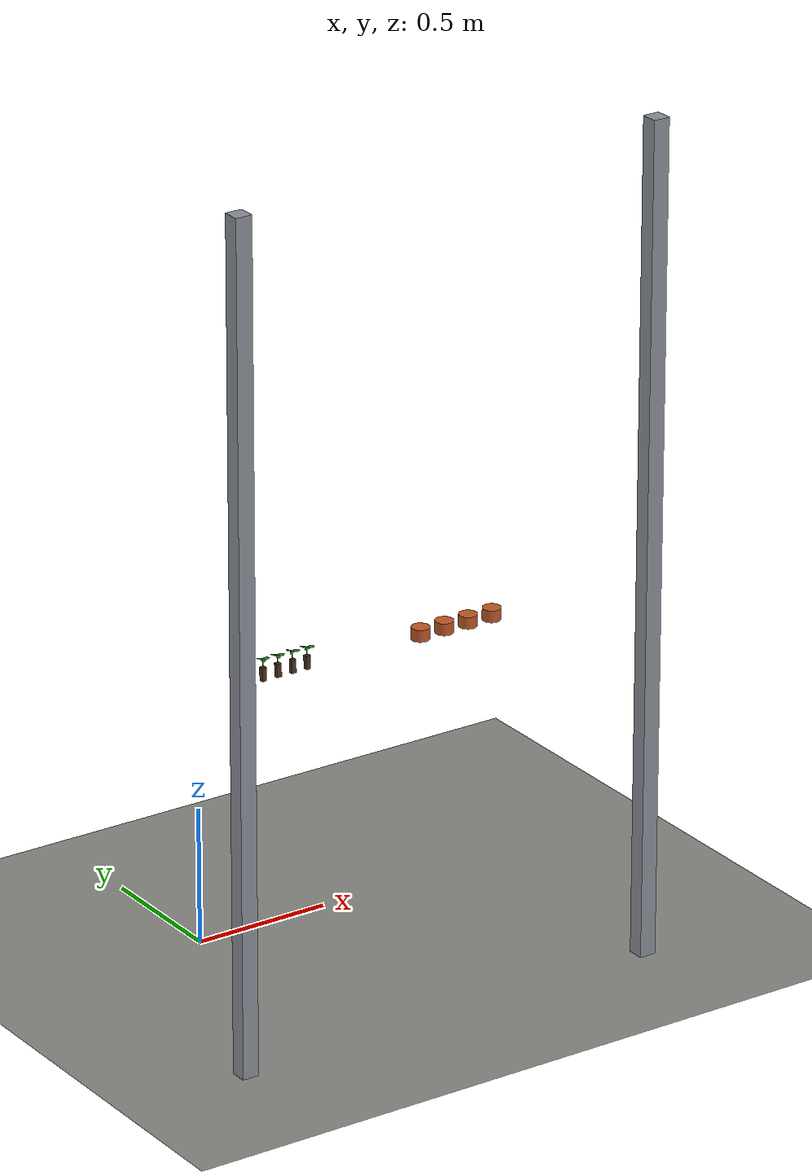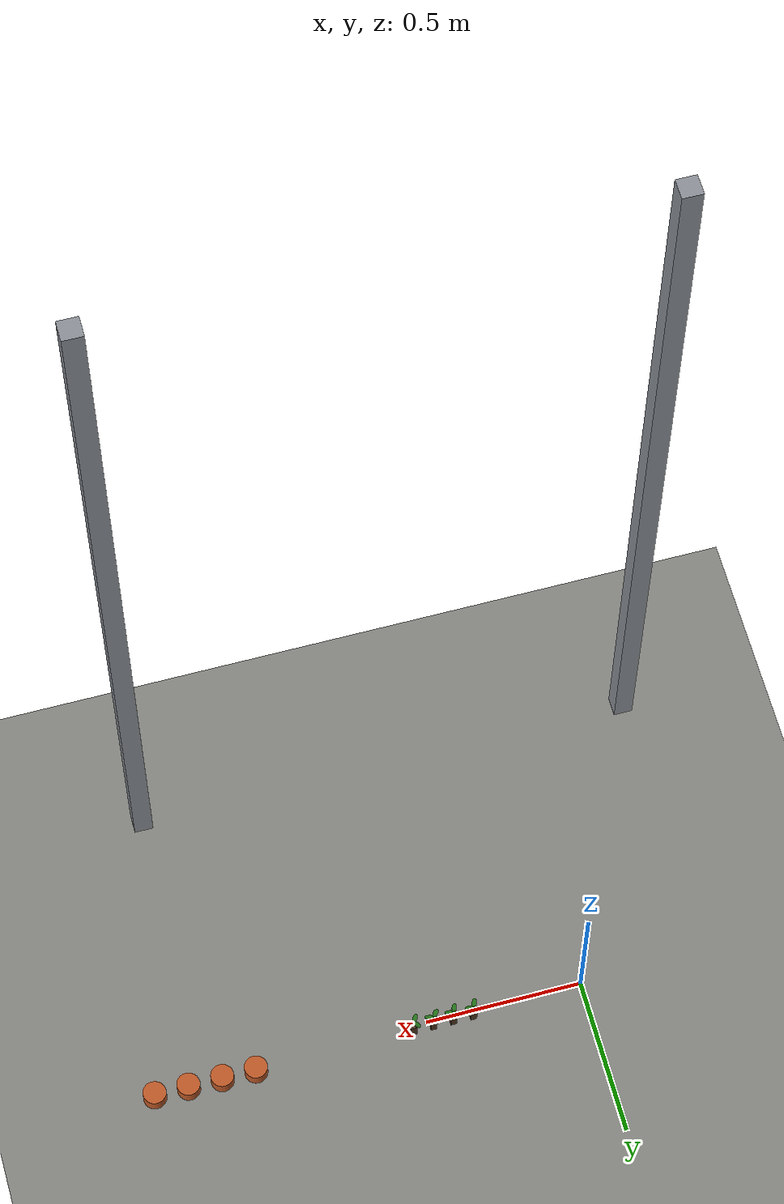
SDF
<sdf version="1.8">
 <world name="nursery_transplanting">
  <model name="floor">
   <static>true</static>
   <link name="link">
    <collision name="c_collision">
     <geometry><plane><normal>0 0 1</normal><size>20 20</size></plane></geometry>
     <surface><friction><ode><mu>1.0</mu><mu2>1.0</mu2></ode></friction></surface>
    </collision>
    <visual name="v">
     <geometry><plane><normal>0 0 1</normal><size>20 20</size></plane></geometry>
     <material>
      <ambient>0.520 0.520 0.500 1</ambient>
      <diffuse>0.520 0.520 0.500 1</diffuse>
      <specular>0.1 0.1 0.1 1</specular>
     </material>
    </visual>
   </link>
  </model>
  <model name="post_0a">
   <static>true</static>
   <pose>-0.4000 -0.9000 1.5000 0.0000 0.0000 0.0000</pose>
   <link name="link">
    <visual name="v">
     <geometry><box><size>0.0600 0.0600 3.0000</size></box></geometry>
     <material>
      <ambient>0.550 0.570 0.600 1</ambient>
      <diffuse>0.550 0.570 0.600 1</diffuse>
      <specular>0.1 0.1 0.1 1</specular>
     </material>
    </visual>
   </link>
  </model>
  <model name="post_1a">
   <static>true</static>
   <pose>1.2000 -0.9000 1.5000 0.0000 0.0000 0.0000</pose>
   <link name="link">
    <visual name="v">
     <geometry><box><size>0.0600 0.0600 3.0000</size></box></geometry>
     <material>
      <ambient>0.550 0.570 0.600 1</ambient>
      <diffuse>0.550 0.570 0.600 1</diffuse>
      <specular>0.1 0.1 0.1 1</specular>
     </material>
    </visual>
   </link>
  </model>
  <model name="seedling_0">
   <pose>0.4500 0.2900 0.7770 0.0000 0.0000 0.0000</pose>
   <link name="link">
    <inertial>
     <mass>0.016</mass>
     <inertia>
      <ixx>3.765e-06</ixx>
      <iyy>3.765e-06</iyy>
      <izz>8.640e-07</izz>
      <ixy>0</ixy>
      <ixz>0</ixz>
      <iyz>0</iyz>
     </inertia>
    </inertial>
    <visual name="plug">
     <geometry><box><size>0.0180 0.0180 0.0500</size></box></geometry>
     <material>
      <ambient>0.300 0.200 0.120 1</ambient>
      <diffuse>0.300 0.200 0.120 1</diffuse>
      <specular>0.1 0.1 0.1 1</specular>
     </material>
    </visual>
    <visual name="stem">
     <pose>0.0000 0.0000 0.0400 0.0000 0.0000 0.0000</pose>
     <geometry><cylinder><radius>0.0015</radius><length>0.0300</length></cylinder></geometry>
     <material>
      <ambient>0.100 0.500 0.120 1</ambient>
      <diffuse>0.100 0.500 0.120 1</diffuse>
      <specular>0.1 0.1 0.1 1</specular>
     </material>
    </visual>
    <collision name="core_collision">
     <geometry><box><size>0.0060 0.0060 0.0500</size></box></geometry>
     <surface><friction><ode><mu>1.5</mu><mu2>1.5</mu2></ode></friction></surface>
    </collision>
    <collision name="foot_collision">
     <pose>0.0000 0.0000 -0.0200 0.0000 0.0000 0.0000</pose>
     <geometry><box><size>0.0180 0.0180 0.0100</size></box></geometry>
     <surface><friction><ode><mu>1.5</mu><mu2>1.5</mu2></ode></friction></surface>
    </collision>
    <visual name="leaf0">
     <pose>0.0120 -0.0002 0.0550 0.2500 0.0000 -0.0153</pose>
     <geometry><ellipsoid><radii>0.0140 0.0070 0.0020</radii></ellipsoid></geometry>
     <material>
      <ambient>0.140 0.450 0.100 1</ambient>
      <diffuse>0.140 0.450 0.100 1</diffuse>
      <specular>0.1 0.1 0.1 1</specular>
     </material>
    </visual>
    <visual name="leaf1">
     <pose>-0.0070 0.0097 0.0550 0.2500 0.0000 2.1945</pose>
     <geometry><ellipsoid><radii>0.0140 0.0070 0.0020</radii></ellipsoid></geometry>
     <material>
      <ambient>0.140 0.450 0.100 1</ambient>
      <diffuse>0.140 0.450 0.100 1</diffuse>
      <specular>0.1 0.1 0.1 1</specular>
     </material>
    </visual>
    <visual name="leaf2">
     <pose>-0.0048 -0.0110 0.0550 0.2500 0.0000 4.2998</pose>
     <geometry><ellipsoid><radii>0.0140 0.0070 0.0020</radii></ellipsoid></geometry>
     <material>
      <ambient>0.140 0.450 0.100 1</ambient>
      <diffuse>0.140 0.450 0.100 1</diffuse>
      <specular>0.1 0.1 0.1 1</specular>
     </material>
    </visual>
   </link>
   <plugin filename="ignition-gazebo-detachable-joint-system" name="ignition::gazebo::systems::DetachableJoint">
    <parent_link>link</parent_link>
    <child_model>agrobot</child_model>
    <child_link>link_4</child_link>
    <attach_topic>/agrobot/sim/seedling_0/attach_gripper</attach_topic>
    <detach_topic>/agrobot/sim/seedling_0/detach_gripper</detach_topic>
    <suppress_child_warning>true</suppress_child_warning>
   </plugin>
  </model>
  <model name="seedling_2">
   <pose>0.5100 0.2900 0.7770 0.0000 0.0000 0.0000</pose>
   <link name="link">
    <inertial>
     <mass>0.016</mass>
     <inertia>
      <ixx>3.765e-06</ixx>
      <iyy>3.765e-06</iyy>
      <izz>8.640e-07</izz>
      <ixy>0</ixy>
      <ixz>0</ixz>
      <iyz>0</iyz>
     </inertia>
    </inertial>
    <visual name="plug">
     <geometry><box><size>0.0180 0.0180 0.0500</size></box></geometry>
     <material>
      <ambient>0.300 0.200 0.120 1</ambient>
      <diffuse>0.300 0.200 0.120 1</diffuse>
      <specular>0.1 0.1 0.1 1</specular>
     </material>
    </visual>
    <visual name="stem">
     <pose>0.0000 0.0000 0.0400 0.0000 0.0000 0.0000</pose>
     <geometry><cylinder><radius>0.0015</radius><length>0.0300</length></cylinder></geometry>
     <material>
      <ambient>0.100 0.500 0.120 1</ambient>
      <diffuse>0.100 0.500 0.120 1</diffuse>
      <specular>0.1 0.1 0.1 1</specular>
     </material>
    </visual>
    <collision name="core_collision">
     <geometry><box><size>0.0060 0.0060 0.0500</size></box></geometry>
     <surface><friction><ode><mu>1.5</mu><mu2>1.5</mu2></ode></friction></surface>
    </collision>
    <collision name="foot_collision">
     <pose>0.0000 0.0000 -0.0200 0.0000 0.0000 0.0000</pose>
     <geometry><box><size>0.0180 0.0180 0.0100</size></box></geometry>
     <surface><friction><ode><mu>1.5</mu><mu2>1.5</mu2></ode></friction></surface>
    </collision>
    <visual name="leaf0">
     <pose>0.0119 -0.0016 0.0550 0.2500 0.0000 -0.1356</pose>
     <geometry><ellipsoid><radii>0.0140 0.0070 0.0020</radii></ellipsoid></geometry>
     <material>
      <ambient>0.140 0.450 0.100 1</ambient>
      <diffuse>0.140 0.450 0.100 1</diffuse>
      <specular>0.1 0.1 0.1 1</specular>
     </material>
    </visual>
    <visual name="leaf1">
     <pose>-0.0079 0.0091 0.0550 0.2500 0.0000 2.2862</pose>
     <geometry><ellipsoid><radii>0.0140 0.0070 0.0020</radii></ellipsoid></geometry>
     <material>
      <ambient>0.140 0.450 0.100 1</ambient>
      <diffuse>0.140 0.450 0.100 1</diffuse>
      <specular>0.1 0.1 0.1 1</specular>
     </material>
    </visual>
    <visual name="leaf2">
     <pose>-0.0047 -0.0111 0.0550 0.2500 0.0000 4.3144</pose>
     <geometry><ellipsoid><radii>0.0140 0.0070 0.0020</radii></ellipsoid></geometry>
     <material>
      <ambient>0.140 0.450 0.100 1</ambient>
      <diffuse>0.140 0.450 0.100 1</diffuse>
      <specular>0.1 0.1 0.1 1</specular>
     </material>
    </visual>
   </link>
   <plugin filename="ignition-gazebo-detachable-joint-system" name="ignition::gazebo::systems::DetachableJoint">
    <parent_link>link</parent_link>
    <child_model>agrobot</child_model>
    <child_link>link_4</child_link>
    <attach_topic>/agrobot/sim/seedling_2/attach_gripper</attach_topic>
    <detach_topic>/agrobot/sim/seedling_2/detach_gripper</detach_topic>
    <suppress_child_warning>true</suppress_child_warning>
   </plugin>
  </model>
  <model name="seedling_4">
   <pose>0.5700 0.2900 0.7770 0.0000 0.0000 0.0000</pose>
   <link name="link">
    <inertial>
     <mass>0.016</mass>
     <inertia>
      <ixx>3.765e-06</ixx>
      <iyy>3.765e-06</iyy>
      <izz>8.640e-07</izz>
      <ixy>0</ixy>
      <ixz>0</ixz>
      <iyz>0</iyz>
     </inertia>
    </inertial>
    <visual name="plug">
     <geometry><box><size>0.0180 0.0180 0.0500</size></box></geometry>
     <material>
      <ambient>0.300 0.200 0.120 1</ambient>
      <diffuse>0.300 0.200 0.120 1</diffuse>
      <specular>0.1 0.1 0.1 1</specular>
     </material>
    </visual>
    <visual name="stem">
     <pose>0.0000 0.0000 0.0400 0.0000 0.0000 0.0000</pose>
     <geometry><cylinder><radius>0.0015</radius><length>0.0300</length></cylinder></geometry>
     <material>
      <ambient>0.100 0.500 0.120 1</ambient>
      <diffuse>0.100 0.500 0.120 1</diffuse>
      <specular>0.1 0.1 0.1 1</specular>
     </material>
    </visual>
    <collision name="core_collision">
     <geometry><box><size>0.0060 0.0060 0.0500</size></box></geometry>
     <surface><friction><ode><mu>1.5</mu><mu2>1.5</mu2></ode></friction></surface>
    </collision>
    <collision name="foot_collision">
     <pose>0.0000 0.0000 -0.0200 0.0000 0.0000 0.0000</pose>
     <geometry><box><size>0.0180 0.0180 0.0100</size></box></geometry>
     <surface><friction><ode><mu>1.5</mu><mu2>1.5</mu2></ode></friction></surface>
    </collision>
    <visual name="leaf0">
     <pose>0.0117 -0.0025 0.0550 0.2500 0.0000 -0.2128</pose>
     <geometry><ellipsoid><radii>0.0140 0.0070 0.0020</radii></ellipsoid></geometry>
     <material>
      <ambient>0.140 0.450 0.100 1</ambient>
      <diffuse>0.140 0.450 0.100 1</diffuse>
      <specular>0.1 0.1 0.1 1</specular>
     </material>
    </visual>
    <visual name="leaf1">
     <pose>-0.0057 0.0106 0.0550 0.2500 0.0000 2.0640</pose>
     <geometry><ellipsoid><radii>0.0140 0.0070 0.0020</radii></ellipsoid></geometry>
     <material>
      <ambient>0.140 0.450 0.100 1</ambient>
      <diffuse>0.140 0.450 0.100 1</diffuse>
      <specular>0.1 0.1 0.1 1</specular>
     </material>
    </visual>
    <visual name="leaf2">
     <pose>-0.0079 -0.0091 0.0550 0.2500 0.0000 3.9974</pose>
     <geometry><ellipsoid><radii>0.0140 0.0070 0.0020</radii></ellipsoid></geometry>
     <material>
      <ambient>0.140 0.450 0.100 1</ambient>
      <diffuse>0.140 0.450 0.100 1</diffuse>
      <specular>0.1 0.1 0.1 1</specular>
     </material>
    </visual>
   </link>
   <plugin filename="ignition-gazebo-detachable-joint-system" name="ignition::gazebo::systems::DetachableJoint">
    <parent_link>link</parent_link>
    <child_model>agrobot</child_model>
    <child_link>link_4</child_link>
    <attach_topic>/agrobot/sim/seedling_4/attach_gripper</attach_topic>
    <detach_topic>/agrobot/sim/seedling_4/detach_gripper</detach_topic>
    <suppress_child_warning>true</suppress_child_warning>
   </plugin>
  </model>
  <model name="seedling_6">
   <pose>0.6300 0.2900 0.7770 0.0000 0.0000 0.0000</pose>
   <link name="link">
    <inertial>
     <mass>0.016</mass>
     <inertia>
      <ixx>3.765e-06</ixx>
      <iyy>3.765e-06</iyy>
      <izz>8.640e-07</izz>
      <ixy>0</ixy>
      <ixz>0</ixz>
      <iyz>0</iyz>
     </inertia>
    </inertial>
    <visual name="plug">
     <geometry><box><size>0.0180 0.0180 0.0500</size></box></geometry>
     <material>
      <ambient>0.300 0.200 0.120 1</ambient>
      <diffuse>0.300 0.200 0.120 1</diffuse>
      <specular>0.1 0.1 0.1 1</specular>
     </material>
    </visual>
    <visual name="stem">
     <pose>0.0000 0.0000 0.0400 0.0000 0.0000 0.0000</pose>
     <geometry><cylinder><radius>0.0015</radius><length>0.0300</length></cylinder></geometry>
     <material>
      <ambient>0.100 0.500 0.120 1</ambient>
      <diffuse>0.100 0.500 0.120 1</diffuse>
      <specular>0.1 0.1 0.1 1</specular>
     </material>
    </visual>
    <collision name="core_collision">
     <geometry><box><size>0.0060 0.0060 0.0500</size></box></geometry>
     <surface><friction><ode><mu>1.5</mu><mu2>1.5</mu2></ode></friction></surface>
    </collision>
    <collision name="foot_collision">
     <pose>0.0000 0.0000 -0.0200 0.0000 0.0000 0.0000</pose>
     <geometry><box><size>0.0180 0.0180 0.0100</size></box></geometry>
     <surface><friction><ode><mu>1.5</mu><mu2>1.5</mu2></ode></friction></surface>
    </collision>
    <visual name="leaf0">
     <pose>0.0116 -0.0030 0.0550 0.2500 0.0000 -0.2552</pose>
     <geometry><ellipsoid><radii>0.0140 0.0070 0.0020</radii></ellipsoid></geometry>
     <material>
      <ambient>0.140 0.450 0.100 1</ambient>
      <diffuse>0.140 0.450 0.100 1</diffuse>
      <specular>0.1 0.1 0.1 1</specular>
     </material>
    </visual>
    <visual name="leaf1">
     <pose>-0.0072 0.0096 0.0550 0.2500 0.0000 2.2122</pose>
     <geometry><ellipsoid><radii>0.0140 0.0070 0.0020</radii></ellipsoid></geometry>
     <material>
      <ambient>0.140 0.450 0.100 1</ambient>
      <diffuse>0.140 0.450 0.100 1</diffuse>
      <specular>0.1 0.1 0.1 1</specular>
     </material>
    </visual>
    <visual name="leaf2">
     <pose>-0.0069 -0.0098 0.0550 0.2500 0.0000 4.1022</pose>
     <geometry><ellipsoid><radii>0.0140 0.0070 0.0020</radii></ellipsoid></geometry>
     <material>
      <ambient>0.140 0.450 0.100 1</ambient>
      <diffuse>0.140 0.450 0.100 1</diffuse>
      <specular>0.1 0.1 0.1 1</specular>
     </material>
    </visual>
   </link>
   <plugin filename="ignition-gazebo-detachable-joint-system" name="ignition::gazebo::systems::DetachableJoint">
    <parent_link>link</parent_link>
    <child_model>agrobot</child_model>
    <child_link>link_4</child_link>
    <attach_topic>/agrobot/sim/seedling_6/attach_gripper</attach_topic>
    <detach_topic>/agrobot/sim/seedling_6/detach_gripper</detach_topic>
    <suppress_child_warning>true</suppress_child_warning>
   </plugin>
  </model>
  <model name="pot_0">
   <static>true</static>
   <pose>1.1000 0.2900 0.7480 0.0000 0.0000 0.0000</pose>
   <link name="link">
    <visual name="shell">
     <pose>0.0000 0.0000 0.0225 0.0000 0.0000 0.0000</pose>
     <geometry><cylinder><radius>0.0340</radius><length>0.0450</length></cylinder></geometry>
     <material>
      <ambient>0.750 0.350 0.150 1</ambient>
      <diffuse>0.750 0.350 0.150 1</diffuse>
      <specular>0.1 0.1 0.1 1</specular>
     </material>
    </visual>
    <visual name="soil">
     <pose>0.0000 0.0000 0.0350 0.0000 0.0000 0.0000</pose>
     <geometry><cylinder><radius>0.0310</radius><length>0.0020</length></cylinder></geometry>
     <material>
      <ambient>0.300 0.200 0.120 1</ambient>
      <diffuse>0.300 0.200 0.120 1</diffuse>
      <specular>0.1 0.1 0.1 1</specular>
     </material>
    </visual>
    <collision name="soil_collision">
     <pose>0.0000 0.0000 0.0180 0.0000 0.0000 0.0000</pose>
     <geometry><cylinder><radius>0.0310</radius><length>0.0360</length></cylinder></geometry>
     <surface><friction><ode><mu>1.0</mu><mu2>1.0</mu2></ode></friction></surface>
    </collision>
   </link>
  </model>
  <model name="pot_2">
   <static>true</static>
   <pose>1.2000 0.2900 0.7480 0.0000 0.0000 0.0000</pose>
   <link name="link">
    <visual name="shell">
     <pose>0.0000 0.0000 0.0225 0.0000 0.0000 0.0000</pose>
     <geometry><cylinder><radius>0.0340</radius><length>0.0450</length></cylinder></geometry>
     <material>
      <ambient>0.750 0.350 0.150 1</ambient>
      <diffuse>0.750 0.350 0.150 1</diffuse>
      <specular>0.1 0.1 0.1 1</specular>
     </material>
    </visual>
    <visual name="soil">
     <pose>0.0000 0.0000 0.0350 0.0000 0.0000 0.0000</pose>
     <geometry><cylinder><radius>0.0310</radius><length>0.0020</length></cylinder></geometry>
     <material>
      <ambient>0.300 0.200 0.120 1</ambient>
      <diffuse>0.300 0.200 0.120 1</diffuse>
      <specular>0.1 0.1 0.1 1</specular>
     </material>
    </visual>
    <collision name="soil_collision">
     <pose>0.0000 0.0000 0.0180 0.0000 0.0000 0.0000</pose>
     <geometry><cylinder><radius>0.0310</radius><length>0.0360</length></cylinder></geometry>
     <surface><friction><ode><mu>1.0</mu><mu2>1.0</mu2></ode></friction></surface>
    </collision>
   </link>
  </model>
  <model name="pot_4">
   <static>true</static>
   <pose>1.3000 0.2900 0.7480 0.0000 0.0000 0.0000</pose>
   <link name="link">
    <visual name="shell">
     <pose>0.0000 0.0000 0.0225 0.0000 0.0000 0.0000</pose>
     <geometry><cylinder><radius>0.0340</radius><length>0.0450</length></cylinder></geometry>
     <material>
      <ambient>0.750 0.350 0.150 1</ambient>
      <diffuse>0.750 0.350 0.150 1</diffuse>
      <specular>0.1 0.1 0.1 1</specular>
     </material>
    </visual>
    <visual name="soil">
     <pose>0.0000 0.0000 0.0350 0.0000 0.0000 0.0000</pose>
     <geometry><cylinder><radius>0.0310</radius><length>0.0020</length></cylinder></geometry>
     <material>
      <ambient>0.300 0.200 0.120 1</ambient>
      <diffuse>0.300 0.200 0.120 1</diffuse>
      <specular>0.1 0.1 0.1 1</specular>
     </material>
    </visual>
    <collision name="soil_collision">
     <pose>0.0000 0.0000 0.0180 0.0000 0.0000 0.0000</pose>
     <geometry><cylinder><radius>0.0310</radius><length>0.0360</length></cylinder></geometry>
     <surface><friction><ode><mu>1.0</mu><mu2>1.0</mu2></ode></friction></surface>
    </collision>
   </link>
  </model>
  <model name="pot_6">
   <static>true</static>
   <pose>1.4000 0.2900 0.7480 0.0000 0.0000 0.0000</pose>
   <link name="link">
    <visual name="shell">
     <pose>0.0000 0.0000 0.0225 0.0000 0.0000 0.0000</pose>
     <geometry><cylinder><radius>0.0340</radius><length>0.0450</length></cylinder></geometry>
     <material>
      <ambient>0.750 0.350 0.150 1</ambient>
      <diffuse>0.750 0.350 0.150 1</diffuse>
      <specular>0.1 0.1 0.1 1</specular>
     </material>
    </visual>
    <visual name="soil">
     <pose>0.0000 0.0000 0.0350 0.0000 0.0000 0.0000</pose>
     <geometry><cylinder><radius>0.0310</radius><length>0.0020</length></cylinder></geometry>
     <material>
      <ambient>0.300 0.200 0.120 1</ambient>
      <diffuse>0.300 0.200 0.120 1</diffuse>
      <specular>0.1 0.1 0.1 1</specular>
     </material>
    </visual>
    <collision name="soil_collision">
     <pose>0.0000 0.0000 0.0180 0.0000 0.0000 0.0000</pose>
     <geometry><cylinder><radius>0.0310</radius><length>0.0360</length></cylinder></geometry>
     <surface><friction><ode><mu>1.0</mu><mu2>1.0</mu2></ode></friction></surface>
    </collision>
   </link>
  </model>
 </world>
</sdf>
